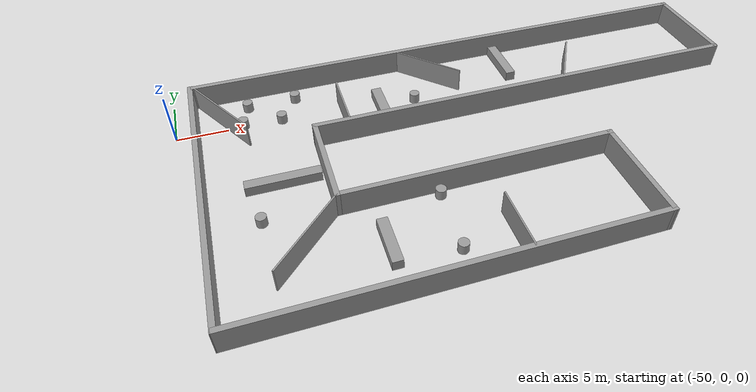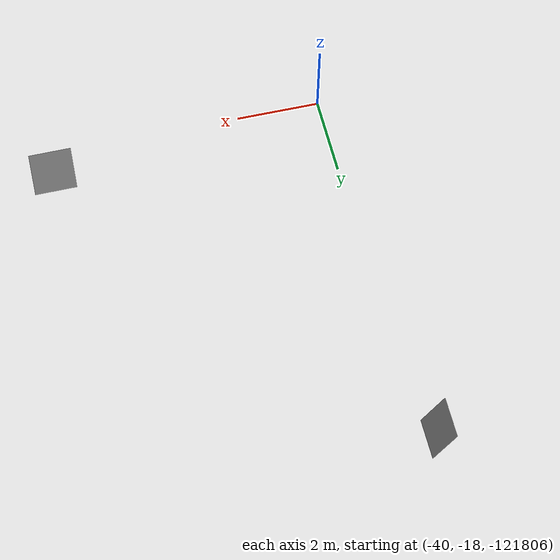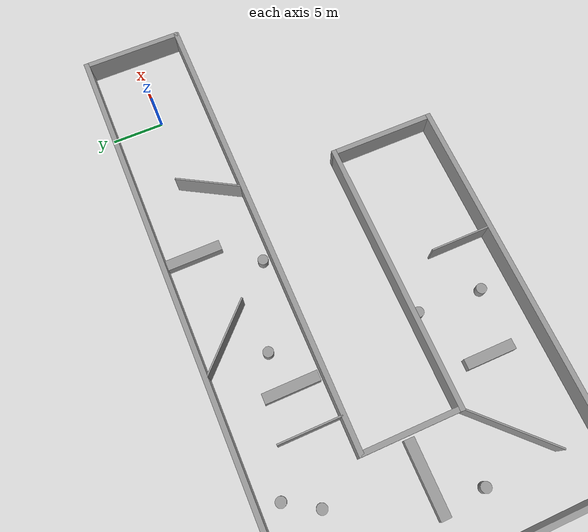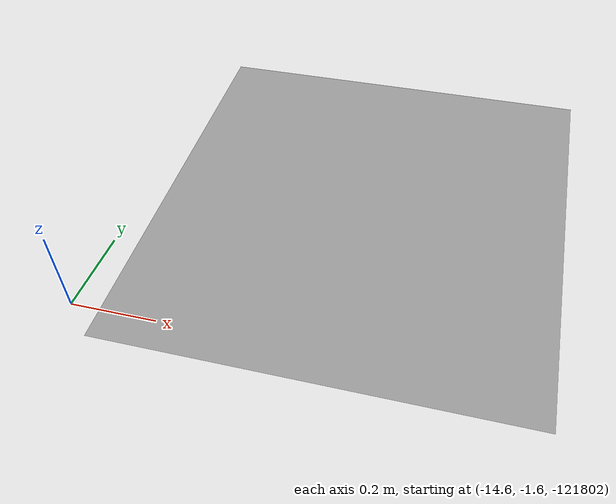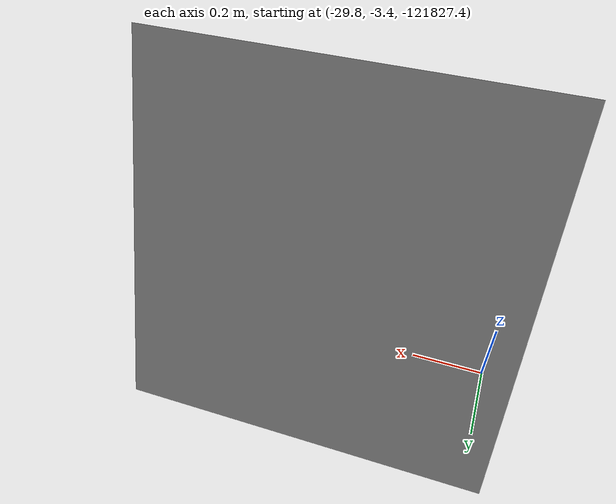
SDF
<sdf version="1.7">
 <world name="default">
  <light name="sun" type="directional">
   <pose>0 0 10 0 -0 0</pose>
   <diffuse>0.8 0.8 0.8 1</diffuse>
   <specular>0.2 0.2 0.2 1</specular>
   <attenuation>
    <range>1000</range>
    <constant>0.9</constant>
    <linear>0.01</linear>
    <quadratic>0.001</quadratic>
   </attenuation>
   <direction>-0.5 0.1 -0.9</direction>
   <spot><inner_angle>0</inner_angle><outer_angle>0</outer_angle><falloff>0</falloff></spot>
  </light>
  <model name="ground_plane">
   <static>1</static>
   <link name="link">
    <collision name="collision">
     <geometry><plane><normal>0 0 1</normal><size>100 100</size></plane></geometry>
     <surface><friction><ode><mu>100</mu><mu2>50</mu2></ode></friction></surface>
    </collision>
    <visual name="visual">
     <cast_shadows>0</cast_shadows>
     <geometry><plane><normal>0 0 1</normal><size>100 100</size></plane></geometry>
     <material>
      <script><uri>file://media/materials/scripts/gazebo.material</uri><name>Gazebo/Grey</name></script>
     </material>
    </visual>
   </link>
  </model>
  <gravity>0 0 -9.8</gravity>
  <magnetic_field>6e-06 2.3e-05 -4.2e-05</magnetic_field>
  <atmosphere type="adiabatic"/>
  <physics type="ode">
   <max_step_size>0.001</max_step_size>
   <real_time_factor>1</real_time_factor>
   <real_time_update_rate>1000</real_time_update_rate>
  </physics>
  <scene><ambient>0.4 0.4 0.4 1</ambient><background>0.7 0.7 0.7 1</background><shadows>1</shadows></scene>
  <spherical_coordinates>
   <surface_model>EARTH_WGS84</surface_model>
   <latitude_deg>0</latitude_deg>
   <longitude_deg>0</longitude_deg>
   <elevation>0</elevation>
   <heading_deg>0</heading_deg>
  </spherical_coordinates>
  <model name="Untitled2">
   <pose>-20.0721 -9.77323 0 0 -0 0</pose>
   <link name="Wall_0">
    <collision name="Wall_0_Collision">
     <geometry><box><size>56 0.5 2.5</size></box></geometry>
     <pose>0 0 1.25 0 -0 0</pose>
    </collision>
    <visual name="Wall_0_Visual">
     <pose>0 0 1.25 0 -0 0</pose>
     <geometry><box><size>56 0.5 2.5</size></box></geometry>
     <material>
      <script><uri>file://media/materials/scripts/gazebo.material</uri><name>Gazebo/Grey</name></script>
      <ambient>1 1 1 1</ambient>
     </material>
     <meta><layer>0</layer></meta>
    </visual>
    <pose>0.1849 14.4935 0 0 -0 4e-06</pose>
   </link>
   <link name="Wall_10">
    <collision name="Wall_10_Collision">
     <geometry><box><size>37.5245 0.5 2.5</size></box></geometry>
     <pose>0 0 1.25 0 -0 0</pose>
    </collision>
    <visual name="Wall_10_Visual">
     <pose>0 0 1.25 0 -0 0</pose>
     <geometry><box><size>37.5245 0.5 2.5</size></box></geometry>
     <material>
      <script><uri>file://media/materials/scripts/gazebo.material</uri><name>Gazebo/Grey</name></script>
      <ambient>1 1 1 1</ambient>
     </material>
     <meta><layer>0</layer></meta>
    </visual>
    <pose>-9.37314 -14.5053 0 0 -0 3.13941</pose>
   </link>
   <link name="Wall_11">
    <collision name="Wall_11_Collision">
     <geometry><box><size>29.5105 0.5 2.5</size></box></geometry>
     <pose>0 0 1.25 0 -0 0</pose>
    </collision>
    <visual name="Wall_11_Visual">
     <pose>0 0 1.25 0 -0 0</pose>
     <geometry><box><size>29.5105 0.5 2.5</size></box></geometry>
     <material>
      <script><uri>file://media/materials/scripts/gazebo.material</uri><name>Gazebo/Grey</name></script>
      <ambient>1 1 1 1</ambient>
     </material>
     <meta><layer>0</layer></meta>
    </visual>
    <pose>-27.9261 0.040606 0 0 -0 1.56872</pose>
   </link>
   <link name="Wall_14">
    <collision name="Wall_14_Collision">
     <geometry><box><size>6.5 0.15 2.5</size></box></geometry>
     <pose>0 0 1.25 0 -0 0</pose>
    </collision>
    <visual name="Wall_14_Visual">
     <pose>0 0 1.25 0 -0 0</pose>
     <geometry><box><size>6.5 0.15 2.5</size></box></geometry>
     <material>
      <script><uri>file://media/materials/scripts/gazebo.material</uri><name>Gazebo/Grey</name></script>
      <ambient>1 1 1 1</ambient>
     </material>
     <meta><layer>0</layer></meta>
    </visual>
    <pose>10.9756 7.72766 0 0 -0 1.0472</pose>
   </link>
   <link name="Wall_17">
    <collision name="Wall_17_Collision">
     <geometry><box><size>7.75 0.15 2.5</size></box></geometry>
     <pose>0 0 1.25 0 -0 0</pose>
    </collision>
    <visual name="Wall_17_Visual">
     <pose>0 0 1.25 0 -0 0</pose>
     <geometry><box><size>7.75 0.15 2.5</size></box></geometry>
     <material>
      <script><uri>file://media/materials/scripts/gazebo.material</uri><name>Gazebo/Grey</name></script>
      <ambient>1 1 1 1</ambient>
     </material>
     <meta><layer>0</layer></meta>
    </visual>
    <pose>-3.45851 11.7422 0 0 -0 -0.785398</pose>
   </link>
   <link name="Wall_19">
    <collision name="Wall_19_Collision">
     <geometry><box><size>6 0.15 2.5</size></box></geometry>
     <pose>0 0 1.25 0 -0 0</pose>
    </collision>
    <visual name="Wall_19_Visual">
     <pose>0 0 1.25 0 -0 0</pose>
     <geometry><box><size>6 0.15 2.5</size></box></geometry>
     <material>
      <script><uri>file://media/materials/scripts/gazebo.material</uri><name>Gazebo/Grey</name></script>
      <ambient>1 1 1 1</ambient>
     </material>
     <meta><layer>0</layer></meta>
    </visual>
    <pose>-13.538 7.9966 0 0 -0 1.5708</pose>
   </link>
   <link name="Wall_2">
    <collision name="Wall_2_Collision">
     <geometry><box><size>45.3502 0.5 2.5</size></box></geometry>
     <pose>0 0 1.25 0 -0 0</pose>
    </collision>
    <visual name="Wall_2_Visual">
     <pose>0 0 1.25 0 -0 0</pose>
     <geometry><box><size>45.3502 0.5 2.5</size></box></geometry>
     <material>
      <script><uri>file://media/materials/scripts/gazebo.material</uri><name>Gazebo/Grey</name></script>
      <ambient>1 1 1 1</ambient>
     </material>
     <meta><layer>0</layer></meta>
    </visual>
    <pose>5.46409 4.90423 0 0 -0 0</pose>
   </link>
   <link name="Wall_21">
    <collision name="Wall_21_Collision">
     <geometry><box><size>9 0.15 2.5</size></box></geometry>
     <pose>0 0 1.25 0 -0 0</pose>
    </collision>
    <visual name="Wall_21_Visual">
     <pose>0 0 1.25 0 -0 0</pose>
     <geometry><box><size>9 0.15 2.5</size></box></geometry>
     <material>
      <script><uri>file://media/materials/scripts/gazebo.material</uri><name>Gazebo/Grey</name></script>
      <ambient>1 1 1 1</ambient>
     </material>
     <meta><layer>0</layer></meta>
    </visual>
    <pose>-20.0899 -7.57472 0 0 -0 -2.35619</pose>
   </link>
   <link name="Wall_23">
    <collision name="Wall_23_Collision">
     <geometry><box><size>6 0.15 2.5</size></box></geometry>
     <pose>0 0 1.25 0 -0 0</pose>
    </collision>
    <visual name="Wall_23_Visual">
     <pose>0 0 1.25 0 -0 0</pose>
     <geometry><box><size>6 0.15 2.5</size></box></geometry>
     <material>
      <script><uri>file://media/materials/scripts/gazebo.material</uri><name>Gazebo/Grey</name></script>
      <ambient>1 1 1 1</ambient>
     </material>
     <meta><layer>0</layer></meta>
    </visual>
    <pose>-3.43181 -11.5608 0 0 -0 1.5708</pose>
   </link>
   <link name="Wall_25">
    <collision name="Wall_25_Collision">
     <geometry><box><size>9 0.15 2.5</size></box></geometry>
     <pose>0 0 1.25 0 -0 0</pose>
    </collision>
    <visual name="Wall_25_Visual">
     <pose>0 0 1.25 0 -0 0</pose>
     <geometry><box><size>9 0.15 2.5</size></box></geometry>
     <material>
      <script><uri>file://media/materials/scripts/gazebo.material</uri><name>Gazebo/Grey</name></script>
      <ambient>1 1 1 1</ambient>
     </material>
     <meta><layer>0</layer></meta>
    </visual>
    <pose>-25.3526 10.6612 0 0 -0 -1.0472</pose>
   </link>
   <link name="Wall_5">
    <collision name="Wall_5_Collision">
     <geometry><box><size>9.93142 0.5 2.5</size></box></geometry>
     <pose>0 0 1.25 0 -0 0</pose>
    </collision>
    <visual name="Wall_5_Visual">
     <pose>0 0 1.25 0 -0 0</pose>
     <geometry><box><size>9.93142 0.5 2.5</size></box></geometry>
     <material>
      <script><uri>file://media/materials/scripts/gazebo.material</uri><name>Gazebo/Grey</name></script>
      <ambient>1 1 1 1</ambient>
     </material>
     <meta><layer>0</layer></meta>
    </visual>
    <pose>27.9455 9.77792 0 0 -0 -1.56855</pose>
   </link>
   <link name="Wall_7">
    <collision name="Wall_7_Collision">
     <geometry><box><size>9.85 0.5 2.5</size></box></geometry>
     <pose>0 0 1.25 0 -0 0</pose>
    </collision>
    <visual name="Wall_7_Visual">
     <pose>0 0 1.25 0 -0 0</pose>
     <geometry><box><size>9.85 0.5 2.5</size></box></geometry>
     <material>
      <script><uri>file://media/materials/scripts/gazebo.material</uri><name>Gazebo/Grey</name></script>
      <ambient>1 1 1 1</ambient>
     </material>
     <meta><layer>0</layer></meta>
    </visual>
    <pose>-16.9609 0.229226 0 0 -0 -1.5708</pose>
   </link>
   <link name="Wall_8">
    <collision name="Wall_8_Collision">
     <geometry><box><size>26.6 0.5 2.5</size></box></geometry>
     <pose>0 0 1.25 0 -0 0</pose>
    </collision>
    <visual name="Wall_8_Visual">
     <pose>0 0 1.25 0 -0 0</pose>
     <geometry><box><size>26.6 0.5 2.5</size></box></geometry>
     <material>
      <script><uri>file://media/materials/scripts/gazebo.material</uri><name>Gazebo/Grey</name></script>
      <ambient>1 1 1 1</ambient>
     </material>
     <meta><layer>0</layer></meta>
    </visual>
    <pose>-3.91091 -4.44577 0 0 -0 0</pose>
   </link>
   <link name="Wall_9">
    <collision name="Wall_9_Collision">
     <geometry><box><size>10.6 0.5 2.5</size></box></geometry>
     <pose>0 0 1.25 0 -0 0</pose>
    </collision>
    <visual name="Wall_9_Visual">
     <pose>0 0 1.25 0 -0 0</pose>
     <geometry><box><size>10.6 0.5 2.5</size></box></geometry>
     <material>
      <script><uri>file://media/materials/scripts/gazebo.material</uri><name>Gazebo/Grey</name></script>
      <ambient>1 1 1 1</ambient>
     </material>
     <meta><layer>0</layer></meta>
    </visual>
    <pose>9.13909 -9.49577 0 0 -0 -1.5708</pose>
   </link>
   <static>1</static>
  </model>
  <model name="unit_box">
   <pose>-14.0543 -1.14733 -121802 1.64379 -2e-06 0</pose>
   <link name="link">
    <inertial>
     <mass>1</mass>
     <inertia>
      <ixx>0.166667</ixx>
      <ixy>0</ixy>
      <ixz>0</ixz>
      <iyy>0.166667</iyy>
      <iyz>0</iyz>
      <izz>0.166667</izz>
     </inertia>
    </inertial>
    <collision name="collision"><geometry><box><size>1 0 1</size></box></geometry></collision>
    <visual name="visual">
     <geometry><box><size>1 0 1</size></box></geometry>
     <material>
      <script><name>Gazebo/Grey</name><uri>file://media/materials/scripts/gazebo.material</uri></script>
     </material>
    </visual>
   </link>
  </model>
  <model name="unit_box_0">
   <pose>-29.3521 -3.26785 -121827 0.401325 -0.000123 0.000288</pose>
   <link name="link">
    <inertial>
     <mass>1</mass>
     <inertia>
      <ixx>0.166667</ixx>
      <ixy>0</ixy>
      <ixz>0</ixz>
      <iyy>0.166667</iyy>
      <iyz>0</iyz>
      <izz>0.166667</izz>
     </inertia>
    </inertial>
    <collision name="collision"><geometry><box><size>1 0 1</size></box></geometry></collision>
    <visual name="visual">
     <geometry><box><size>1 0 1</size></box></geometry>
     <material>
      <script><name>Gazebo/Grey</name><uri>file://media/materials/scripts/gazebo.material</uri></script>
     </material>
    </visual>
   </link>
  </model>
  <model name="unit_cylinder">
   <pose>-25.9145 -1.107 0.499991 -0 -0 -0</pose>
   <link name="link">
    <inertial>
     <mass>1</mass>
     <inertia><ixx>0.145833</ixx><ixy>0</ixy><ixz>0</ixz><iyy>0.145833</iyy><iyz>0</iyz><izz>0.125</izz></inertia>
    </inertial>
    <collision name="collision">
     <geometry><cylinder><radius>0.5</radius><length>1</length></cylinder></geometry>
    </collision>
    <visual name="visual">
     <geometry><cylinder><radius>0.5</radius><length>1</length></cylinder></geometry>
     <material>
      <script><name>Gazebo/Grey</name><uri>file://media/materials/scripts/gazebo.material</uri></script>
     </material>
    </visual>
   </link>
  </model>
  <model name="unit_cylinder_0">
   <pose>-27.946 -14.9844 0.499994 -1e-06 -1e-06 0</pose>
   <link name="link">
    <inertial>
     <mass>1</mass>
     <inertia><ixx>0.145833</ixx><ixy>0</ixy><ixz>0</ixz><iyy>0.145833</iyy><iyz>0</iyz><izz>0.125</izz></inertia>
    </inertial>
    <collision name="collision">
     <geometry><cylinder><radius>0.5</radius><length>1</length></cylinder></geometry>
    </collision>
    <visual name="visual">
     <geometry><cylinder><radius>0.5</radius><length>1</length></cylinder></geometry>
     <material>
      <script><name>Gazebo/Grey</name><uri>file://media/materials/scripts/gazebo.material</uri></script>
     </material>
    </visual>
   </link>
  </model>
  <model name="unit_box_1">
   <pose>-33.2645 -16.833 -121805 -2.55411 4e-06 -6e-06</pose>
   <link name="link">
    <inertial>
     <mass>1</mass>
     <inertia>
      <ixx>0.166667</ixx>
      <ixy>0</ixy>
      <ixz>0</ixz>
      <iyy>0.166667</iyy>
      <iyz>0</iyz>
      <izz>0.166667</izz>
     </inertia>
    </inertial>
    <collision name="collision"><geometry><box><size>1 0 1</size></box></geometry></collision>
    <visual name="visual">
     <geometry><box><size>1 0 1</size></box></geometry>
     <material>
      <script><name>Gazebo/Grey</name><uri>file://media/materials/scripts/gazebo.material</uri></script>
     </material>
    </visual>
   </link>
  </model>
  <model name="unit_box_2">
   <pose>-40.4321 -8.70937 -121806 3.14159 0.529295 3.14158</pose>
   <link name="link">
    <inertial>
     <mass>1</mass>
     <inertia>
      <ixx>0.166667</ixx>
      <ixy>0</ixy>
      <ixz>0</ixz>
      <iyy>0.166667</iyy>
      <iyz>0</iyz>
      <izz>0.166667</izz>
     </inertia>
    </inertial>
    <collision name="collision"><geometry><box><size>0 1 1</size></box></geometry></collision>
    <visual name="visual">
     <geometry><box><size>0 1 1</size></box></geometry>
     <material>
      <script><name>Gazebo/Grey</name><uri>file://media/materials/scripts/gazebo.material</uri></script>
     </material>
    </visual>
   </link>
  </model>
  <model name="unit_cylinder_1">
   <pose>-43.5098 -13.4172 0.499992 -3e-06 3e-06 0</pose>
   <link name="link">
    <inertial>
     <mass>1</mass>
     <inertia><ixx>0.145833</ixx><ixy>0</ixy><ixz>0</ixz><iyy>0.145833</iyy><iyz>0</iyz><izz>0.125</izz></inertia>
    </inertial>
    <collision name="collision">
     <geometry><cylinder><radius>0.5</radius><length>1</length></cylinder></geometry>
    </collision>
    <visual name="visual">
     <geometry><cylinder><radius>0.5</radius><length>1</length></cylinder></geometry>
     <material>
      <script><name>Gazebo/Grey</name><uri>file://media/materials/scripts/gazebo.material</uri></script>
     </material>
    </visual>
   </link>
  </model>
  <model name="unit_cylinder_2">
   <pose>-28.2378 -21.236 0.499998 3e-06 -3e-06 0</pose>
   <link name="link">
    <inertial>
     <mass>1</mass>
     <inertia><ixx>0.145833</ixx><ixy>0</ixy><ixz>0</ixz><iyy>0.145833</iyy><iyz>0</iyz><izz>0.125</izz></inertia>
    </inertial>
    <collision name="collision">
     <geometry><cylinder><radius>0.5</radius><length>1</length></cylinder></geometry>
    </collision>
    <visual name="visual">
     <geometry><cylinder><radius>0.5</radius><length>1</length></cylinder></geometry>
     <material>
      <script><name>Gazebo/Grey</name><uri>file://media/materials/scripts/gazebo.material</uri></script>
     </material>
    </visual>
   </link>
  </model>
  <model name="unit_cylinder_3">
   <pose>-39.658 -0.258639 0.499997 3e-06 2e-06 0</pose>
   <link name="link">
    <inertial>
     <mass>1</mass>
     <inertia><ixx>0.145833</ixx><ixy>0</ixy><ixz>0</ixz><iyy>0.145833</iyy><iyz>0</iyz><izz>0.125</izz></inertia>
    </inertial>
    <collision name="collision">
     <geometry><cylinder><radius>0.5</radius><length>1</length></cylinder></geometry>
    </collision>
    <visual name="visual">
     <geometry><cylinder><radius>0.5</radius><length>1</length></cylinder></geometry>
     <material>
      <script><name>Gazebo/Grey</name><uri>file://media/materials/scripts/gazebo.material</uri></script>
     </material>
    </visual>
   </link>
  </model>
  <model name="unit_cylinder_4">
   <pose>-42.6987 2.60259 0.499998 3e-06 -3e-06 0</pose>
   <link name="link">
    <inertial>
     <mass>1</mass>
     <inertia><ixx>0.145833</ixx><ixy>0</ixy><ixz>0</ixz><iyy>0.145833</iyy><iyz>0</iyz><izz>0.125</izz></inertia>
    </inertial>
    <collision name="collision">
     <geometry><cylinder><radius>0.5</radius><length>1</length></cylinder></geometry>
    </collision>
    <visual name="visual">
     <geometry><cylinder><radius>0.5</radius><length>1</length></cylinder></geometry>
     <material>
      <script><name>Gazebo/Grey</name><uri>file://media/materials/scripts/gazebo.material</uri></script>
     </material>
    </visual>
   </link>
  </model>
  <model name="unit_cylinder_5">
   <pose>-37.8299 2.66032 0.499997 3e-06 2e-06 0</pose>
   <link name="link">
    <inertial>
     <mass>1</mass>
     <inertia><ixx>0.145833</ixx><ixy>0</ixy><ixz>0</ixz><iyy>0.145833</iyy><iyz>0</iyz><izz>0.125</izz></inertia>
    </inertial>
    <collision name="collision">
     <geometry><cylinder><radius>0.5</radius><length>1</length></cylinder></geometry>
    </collision>
    <visual name="visual">
     <geometry><cylinder><radius>0.5</radius><length>1</length></cylinder></geometry>
     <material>
      <script><name>Gazebo/Grey</name><uri>file://media/materials/scripts/gazebo.material</uri></script>
     </material>
    </visual>
   </link>
  </model>
  <model name="unit_cylinder_6">
   <pose>-43.4543 -0.024012 0.499998 3e-06 -3e-06 0</pose>
   <link name="link">
    <inertial>
     <mass>1</mass>
     <inertia><ixx>0.145833</ixx><ixy>0</ixy><ixz>0</ixz><iyy>0.145833</iyy><iyz>0</iyz><izz>0.125</izz></inertia>
    </inertial>
    <collision name="collision">
     <geometry><cylinder><radius>0.5</radius><length>1</length></cylinder></geometry>
    </collision>
    <visual name="visual">
     <geometry><cylinder><radius>0.5</radius><length>1</length></cylinder></geometry>
     <material>
      <script><name>Gazebo/Grey</name><uri>file://media/materials/scripts/gazebo.material</uri></script>
     </material>
    </visual>
   </link>
  </model>
  <model name="unit_cylinder_7">
   <pose>-17.7541 -3.93731 0.499998 3e-06 -3e-06 0</pose>
   <link name="link">
    <inertial>
     <mass>1</mass>
     <inertia><ixx>0.145833</ixx><ixy>0</ixy><ixz>0</ixz><iyy>0.145833</iyy><iyz>0</iyz><izz>0.125</izz></inertia>
    </inertial>
    <collision name="collision">
     <geometry><cylinder><radius>0.5</radius><length>1</length></cylinder></geometry>
    </collision>
    <visual name="visual">
     <geometry><cylinder><radius>0.5</radius><length>1</length></cylinder></geometry>
     <material>
      <script><name>Gazebo/Grey</name><uri>file://media/materials/scripts/gazebo.material</uri></script>
     </material>
    </visual>
   </link>
  </model>
  <model name="unit_box_3">
   <pose>-14.8078 1.82254 0.497248 0.00104 -0 -2.3e-05</pose>
   <link name="link">
    <inertial>
     <mass>1</mass>
     <inertia>
      <ixx>0.166667</ixx>
      <ixy>0</ixy>
      <ixz>0</ixz>
      <iyy>0.166667</iyy>
      <iyz>0</iyz>
      <izz>0.166667</izz>
     </inertia>
    </inertial>
    <collision name="collision"><geometry><box><size>1 5.29408 1</size></box></geometry></collision>
    <visual name="visual">
     <geometry><box><size>1 5.29408 1</size></box></geometry>
     <material>
      <script><name>Gazebo/Grey</name><uri>file://media/materials/scripts/gazebo.material</uri></script>
     </material>
    </visual>
   </link>
  </model>
  <model name="unit_box_3_clone">
   <pose>-29.55 -1.7877 0.497248 -0.00104 -0 2.3e-05</pose>
   <link name="link">
    <inertial>
     <mass>1</mass>
     <inertia>
      <ixx>0.166667</ixx>
      <ixy>0</ixy>
      <ixz>0</ixz>
      <iyy>0.166667</iyy>
      <iyz>0</iyz>
      <izz>0.166667</izz>
     </inertia>
    </inertial>
    <collision name="collision"><geometry><box><size>1 5.29409 1</size></box></geometry></collision>
    <visual name="visual">
     <geometry><box><size>1 5.29409 1</size></box></geometry>
     <material>
      <script><name>Gazebo/Grey</name><uri>file://media/materials/scripts/gazebo.material</uri></script>
     </material>
    </visual>
   </link>
  </model>
  <model name="unit_box_3_clone_0">
   <pose>-33.8564 -19.0692 0.498306 0.000712 -0 6e-06</pose>
   <link name="link">
    <inertial>
     <mass>1</mass>
     <inertia>
      <ixx>0.166667</ixx>
      <ixy>0</ixy>
      <ixz>0</ixz>
      <iyy>0.166667</iyy>
      <iyz>0</iyz>
      <izz>0.166667</izz>
     </inertia>
    </inertial>
    <collision name="collision"><geometry><box><size>1 4.76072 1</size></box></geometry></collision>
    <visual name="visual">
     <geometry><box><size>1 4.76072 1</size></box></geometry>
     <material>
      <script><name>Gazebo/Grey</name><uri>file://media/materials/scripts/gazebo.material</uri></script>
     </material>
    </visual>
   </link>
  </model>
  <model name="unit_box_4">
   <pose>-40.9607 -9.25756 0.490584 -2e-06 0.002697 -0.000581</pose>
   <link name="link">
    <inertial>
     <mass>1</mass>
     <inertia>
      <ixx>0.166667</ixx>
      <ixy>0</ixy>
      <ixz>0</ixz>
      <iyy>0.166667</iyy>
      <iyz>0</iyz>
      <izz>0.166667</izz>
     </inertia>
    </inertial>
    <collision name="collision"><geometry><box><size>6.98883 1 1</size></box></geometry></collision>
    <visual name="visual">
     <geometry><box><size>6.98883 1 1</size></box></geometry>
     <material>
      <script><name>Gazebo/Grey</name><uri>file://media/materials/scripts/gazebo.material</uri></script>
     </material>
    </visual>
   </link>
  </model>
 </world>
</sdf>
